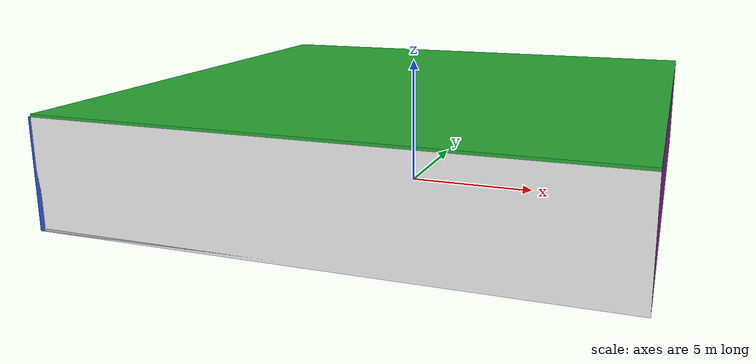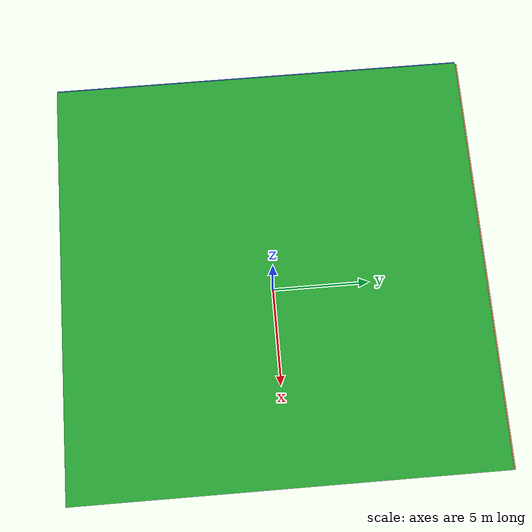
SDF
<sdf version="1.4">
 <world name="default">
  <physics type="ode">
   <max_step_size>0.001</max_step_size>
   <real_time_factor>1</real_time_factor>
   <real_time_update_rate>1000</real_time_update_rate>
   <gravity>0 0 -9.8</gravity>
  </physics>
  <scene><ambient>0.4 0.4 0.4 1</ambient><background>0.7 0.7 0.7 1</background><shadows>1</shadows></scene>
  <model name="Surrounding">
   <static>1</static>
   <link name="Ceiling">
    <collision name="Ceiling_Collision"><geometry><box><size>20 20 0.1</size></box></geometry></collision>
    <visual name="Ceiling_Visual">
     <geometry><box><size>20 20 0.1</size></box></geometry>
     <material>
      <script><uri>file://media/materials/scripts/gazebo.material</uri><name>Gazebo/GreenGlow</name></script>
     </material>
    </visual>
    <pose>0 0 4.05 0 0 0</pose>
   </link>
   <link name="Wall_South">
    <collision name="Wall_South_Collision">
     <geometry><box><size>20 0 4</size></box></geometry>
     <pose>0 0 2 0 -0 0</pose>
    </collision>
    <visual name="Wall_South_Visual">
     <pose>0 0 2 0 -0 0</pose>
     <geometry><box><size>20 0 4</size></box></geometry>
     <material>
      <script><uri>file://media/materials/scripts/gazebo.material</uri><name>Gazebo/White</name></script>
     </material>
    </visual>
    <velocity_decay><linear>0</linear><angular>0</angular></velocity_decay>
    <pose>0 -10 0 0 -0 0</pose>
   </link>
   <link name="Wall_East">
    <collision name="Wall_21_Collision">
     <geometry><box><size>20 0 4</size></box></geometry>
     <pose>0 0 2 0 -0 0</pose>
    </collision>
    <visual name="Wall_21_Visual">
     <pose>0 0 2 0 -0 0</pose>
     <geometry><box><size>20 0 4</size></box></geometry>
     <material>
      <script><uri>file://media/materials/scripts/gazebo.material</uri><name>Gazebo/Purple</name></script>
     </material>
    </visual>
    <velocity_decay><linear>0</linear><angular>0</angular></velocity_decay>
    <pose>10 0 0 0 -0 1.5708</pose>
   </link>
   <link name="Wall_North">
    <collision name="Wall_22_Collision">
     <geometry><box><size>20 0.2 4</size></box></geometry>
     <pose>0 0 2 0 -0 0</pose>
    </collision>
    <visual name="Wall_22_Visual">
     <pose>0 0 2 0 -0 0</pose>
     <geometry><box><size>20 0.2 4</size></box></geometry>
     <material>
      <script><uri>file://media/materials/scripts/gazebo.material</uri><name>Gazebo/WoodFloor</name></script>
     </material>
    </visual>
    <velocity_decay><linear>0</linear><angular>0</angular></velocity_decay>
    <pose>0 10 0 0 -0 0</pose>
   </link>
   <link name="Wall_West">
    <collision name="Wall_23_Collision">
     <geometry><box><size>20 0.2 4</size></box></geometry>
     <pose>0 0 2 0 -0 0</pose>
    </collision>
    <visual name="Wall_23_Visual">
     <pose>0 0 2 0 -0 0</pose>
     <geometry><box><size>20 0.2 4</size></box></geometry>
     <material>
      <script><uri>file://media/materials/scripts/gazebo.material</uri><name>Gazebo/Blue</name></script>
     </material>
    </visual>
    <velocity_decay><linear>0</linear><angular>0</angular></velocity_decay>
    <pose>-10 0 0 0 0 -1.5708</pose>
   </link>
   <link name="Ground_link">
    <collision name="collision">
     <pose>0 0 .05 0 -0 0</pose>
     <geometry><box><size>20 20 0.1</size></box></geometry>
    </collision>
    <visual name="visual">
     <pose>0 0 .05 0 -0 0</pose>
     <geometry><box><size>20 20 0.1</size></box></geometry>
     <material>
      <script><uri>file://media/materials/scripts/gazebo.material</uri><name>Gazebo/CloudySky</name></script>
     </material>
    </visual>
   </link>
   <static>1</static>
  </model>
  <spherical_coordinates>
   <surface_model>EARTH_WGS84</surface_model>
   <latitude_deg>0</latitude_deg>
   <longitude_deg>0</longitude_deg>
   <elevation>0</elevation>
   <heading_deg>0</heading_deg>
  </spherical_coordinates>
  <light name="lightball_0" type="diffuse">
   <diffuse>0.8 0.8 0.8 1</diffuse>
   <specular>0.2 0.2 0.2 1</specular>
   <attenuation>
    <range>100</range>
    <constant>0.7</constant>
    <linear>0.01</linear>
    <quadratic>0.001</quadratic>
   </attenuation>
   <direction>-0.5 0.1 -0.9</direction>
   <pose>8.26375234936 7.14868819591 2.10132988001 0 0 0</pose>
  </light>
  <light name="lightball_1" type="diffuse">
   <diffuse>0.8 0.8 0.8 1</diffuse>
   <specular>0.2 0.2 0.2 1</specular>
   <attenuation>
    <range>100</range>
    <constant>0.7</constant>
    <linear>0.01</linear>
    <quadratic>0.001</quadratic>
   </attenuation>
   <direction>-0.5 0.1 -0.9</direction>
   <pose>-3.72185345097 7.34887983766 0.901683475871 0 0 0</pose>
  </light>
  <light name="lightball_2" type="diffuse">
   <diffuse>0.8 0.8 0.8 1</diffuse>
   <specular>0.2 0.2 0.2 1</specular>
   <attenuation>
    <range>100</range>
    <constant>0.7</constant>
    <linear>0.01</linear>
    <quadratic>0.001</quadratic>
   </attenuation>
   <direction>-0.5 0.1 -0.9</direction>
   <pose>9.14358795306 -6.34741407221 0.97221006172 0 0 0</pose>
  </light>
  <light name="lightball_3" type="diffuse">
   <diffuse>0.8 0.8 0.8 1</diffuse>
   <specular>0.2 0.2 0.2 1</specular>
   <attenuation>
    <range>100</range>
    <constant>0.7</constant>
    <linear>0.01</linear>
    <quadratic>0.001</quadratic>
   </attenuation>
   <direction>-0.5 0.1 -0.9</direction>
   <pose>0.408674988768 -8.72586649309 1.5369800754 0 0 0</pose>
  </light>
  <include>
   <uri>model://construction_cone</uri>
   <pose>-3.47401863944 1.22911406646 0 0 0 3.01412825573</pose>
  </include>
  <include><uri>model://table</uri><pose>-3.76045931178 3.55238867118 0 0 0 2.42774012068</pose></include>
  <include><uri>model://cabinet</uri><pose>1.28922304972 -0.464227070013 0 0 0 2.55094133072</pose></include>
  <include><uri>model://cabinet</uri><pose>4.63351497873 -7.84770224355 0 0 0 0.434004209863</pose></include>
  <include><uri>model://cabinet</uri><pose>7.39987016279 -2.27210010091 0 0 0 1.49470888286</pose></include>
 </world>
</sdf>

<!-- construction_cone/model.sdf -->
<sdf version="1.5">
  <model name="Construction Cone">
    <link name="link">
      <collision name="collision">
        <geometry>
          <mesh>
            <scale>10 10 10</scale>
            <uri>file://isr-testbed/construction_cone/meshes/construction_cone.dae</uri>
          </mesh>
        </geometry>
      </collision>
      <visual name="visual">
        <geometry>
          <mesh>
            <scale>10 10 10</scale>
            <uri>file://isr-testbed/construction_cone/meshes/construction_cone.dae</uri>
          </mesh>
        </geometry>
      </visual>
    </link>
  </model>
</sdf>

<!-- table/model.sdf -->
<sdf version="1.5">
  <model name="table">
    <static>true</static>
    <link name="link">
      <collision name="surface">
        <pose>0 0 1.0 0 0 0</pose>
        <geometry>
          <box>
            <size>1.5 0.8 0.03</size>
          </box>
        </geometry>
        <surface>
          <friction>
            <ode>
              <mu>0.6</mu>
              <mu2>0.6</mu2>
            </ode>
          </friction>
        </surface>
      </collision>
      <visual name="visual1">
        <pose>0 0 1.0 0 0 0</pose>
        <geometry>
          <box>
            <size>1.5 0.8 0.03</size>
          </box>
        </geometry>
        <material>
          <script>
            <uri>model://media/materials/scripts/gazebo.material</uri>
            <name>Gazebo/Wood</name>
          </script>
        </material>
      </visual>
      <collision name="front_left_leg">
        <pose>0.68 0.38 0.5 0 0 0</pose>
        <geometry>
          <cylinder>
            <radius>0.02</radius>
            <length>1.0</length>
          </cylinder>
        </geometry>
      </collision>
      <visual name="front_left_leg">
        <pose>0.68 0.38 0.5 0 0 0</pose>
        <geometry>
          <cylinder>
            <radius>0.02</radius>
            <length>1.0</length>
          </cylinder>
        </geometry>
        <material>
          <script>
            <uri>model://media/materials/scripts/gazebo.material</uri>
            <name>Gazebo/Grey</name>
          </script>
        </material>
      </visual>
      <collision name="front_right_leg">
        <pose>0.68 -0.38 0.5 0 0 0</pose>
        <geometry>
          <cylinder>
            <radius>0.02</radius>
            <length>1.0</length>
          </cylinder>
        </geometry>
      </collision>
      <visual name="front_right_leg">
        <pose>0.68 -0.38 0.5 0 0 0</pose>
        <geometry>
          <cylinder>
            <radius>0.02</radius>
            <length>1.0</length>
          </cylinder>
        </geometry>
        <material>
          <script>
            <uri>model://media/materials/scripts/gazebo.material</uri>
            <name>Gazebo/Grey</name>
          </script>
        </material>
      </visual>
      <collision name="back_right_leg">
        <pose>-0.68 -0.38 0.5 0 0 0</pose>
        <geometry>
          <cylinder>
            <radius>0.02</radius>
            <length>1.0</length>
          </cylinder>
        </geometry>
      </collision>
      <visual name="back_right_leg">
        <pose>-0.68 -0.38 0.5 0 0 0</pose>
        <geometry>
          <cylinder>
            <radius>0.02</radius>
            <length>1.0</length>
          </cylinder>
        </geometry>
        <material>
          <script>
            <uri>model://media/materials/scripts/gazebo.material</uri>
            <name>Gazebo/Grey</name>
          </script>
        </material>
      </visual>
      <collision name="back_left_leg">
        <pose>-0.68 0.38 0.5 0 0 0</pose>
        <geometry>
          <cylinder>
            <radius>0.02</radius>
            <length>1.0</length>
          </cylinder>
        </geometry>
      </collision>
      <visual name="back_left_leg">
        <pose>-0.68 0.38 0.5 0 0 0</pose>
        <geometry>
          <cylinder>
            <radius>0.02</radius>
            <length>1.0</length>
          </cylinder>
        </geometry>
        <material>
          <script>
            <uri>model://media/materials/scripts/gazebo.material</uri>
            <name>Gazebo/Grey</name>
          </script>
        </material>
      </visual>
    </link>
  </model>
</sdf>

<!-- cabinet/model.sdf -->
<sdf version="1.5">
  <model name="cabinet">
    <static>true</static>
    <link name="cabinet_bottom_plate">
      <inertial>
        <pose>0 0 -1 0 0 0</pose>
        <inertia>
          <ixx>2.050000</ixx>
          <ixy>0</ixy>
          <ixz>0</ixz>
          <iyy>2.050000</iyy>
          <iyz>0</iyz>
          <izz>2.050000</izz>
        </inertia>
        <mass>25.000000</mass>
      </inertial>
      <collision name="cabinet_bottom_plate_geom">
        <pose>0 0 0.010000 0 0 0</pose>
        <geometry>
          <box>
            <size>0.450000 0.450000 0.020000</size>
          </box>
        </geometry>
      </collision>
      <visual name="cabinet_bottom_plate_geom_visual">
        <pose>0 0 0.010000 0 0 0</pose>
        <geometry>
          <box>
            <size>0.450000 0.450000 0.020000</size>
          </box>
        </geometry>
        <material>
          <script>
            <uri>model://media/materials/scripts/gazebo.material</uri>
            <name>Gazebo/Wood</name>
          </script>
        </material>
      </visual>
      <collision name="cabinet_bottom_plate_geom_cabinet_back_plate">
        <pose>0.235000 0 0.510000 0 0 0</pose>
        <geometry>
          <box>
            <size>0.020000 0.450000 1.020000</size>
          </box>
        </geometry>
      </collision>
      <visual name="cabinet_bottom_plate_geom_cabinet_back_plate_visual">
        <pose>0.235000 0 0.510000 0 0 0</pose>
        <geometry>
          <box>
            <size>0.020000 0.450000 1.020000</size>
          </box>
        </geometry>
        <material>
          <script>
            <uri>model://media/materials/scripts/gazebo.material</uri>
            <name>Gazebo/Wood</name>
          </script>
        </material>
      </visual>
      <collision name="cabinet_bottom_plate_geom_cabinet_left_plate">
        <pose>0 0.235000 0.510000 0 0 0</pose>
        <geometry>
          <box>
            <size>0.450000 0.020000 1.020000</size>
          </box>
        </geometry>
      </collision>
      <visual name="cabinet_bottom_plate_geom_cabinet_left_plate_visual">
        <pose>0 0.235000 0.510000 0 0 0</pose>
        <geometry>
          <box>
            <size>0.450000 0.020000 1.020000</size>
          </box>
        </geometry>
        <material>
          <script>
            <uri>model://media/materials/scripts/gazebo.material</uri>
            <name>Gazebo/Wood</name>
          </script>
        </material>
      </visual>
      <collision name="cabinet_bottom_plate_geom_cabinet_middle_plate">
        <pose>0 0 0.510000 0 0 0</pose>
        <geometry>
          <box>
            <size>0.450000 0.450000 0.020000</size>
          </box>
        </geometry>
      </collision>
      <visual name="cabinet_bottom_plate_geom_cabinet_middle_plate_visual">
        <pose>0 0 0.510000 0 0 0</pose>
        <geometry>
          <box>
            <size>0.450000 0.450000 0.020000</size>
          </box>
        </geometry>
        <material>
          <script>
            <uri>model://media/materials/scripts/gazebo.material</uri>
            <name>Gazebo/Wood</name>
          </script>
        </material>
      </visual>
      <collision name="cabinet_bottom_plate_geom_cabinet_right_plate">
        <pose>0 -0.235000 0.510000 0 0 0</pose>
        <geometry>
          <box>
            <size>0.450000 0.020000 1.020000</size>
          </box>
        </geometry>
      </collision>
      <visual name="cabinet_bottom_plate_geom_cabinet_right_plate_visual">
        <pose>0 -0.235000 0.510000 0 0 0</pose>
        <geometry>
          <box>
            <size>0.450000 0.020000 1.020000</size>
          </box>
        </geometry>
        <material>
          <script>
            <uri>model://media/materials/scripts/gazebo.material</uri>
            <name>Gazebo/Wood</name>
          </script>
        </material>
      </visual>
      <collision name="cabinet_bottom_plate_geom_cabinet_top_plate">
        <pose>0 0 1.010000 0 0 0</pose>
        <geometry>
          <box>
            <size>0.450000 0.450000 0.020000</size>
          </box>
        </geometry>
      </collision>
      <visual name="cabinet_bottom_plate_geom_cabinet_top_plate_visual">
        <pose>0 0 1.010000 0 0 0</pose>
        <geometry>
          <box>
            <size>0.450000 0.450000 0.020000</size>
          </box>
        </geometry>
        <material>
          <script>
            <uri>model://media/materials/scripts/gazebo.material</uri>
            <name>Gazebo/Wood</name>
          </script>
        </material>
      </visual>
    </link>
  </model>
</sdf>
